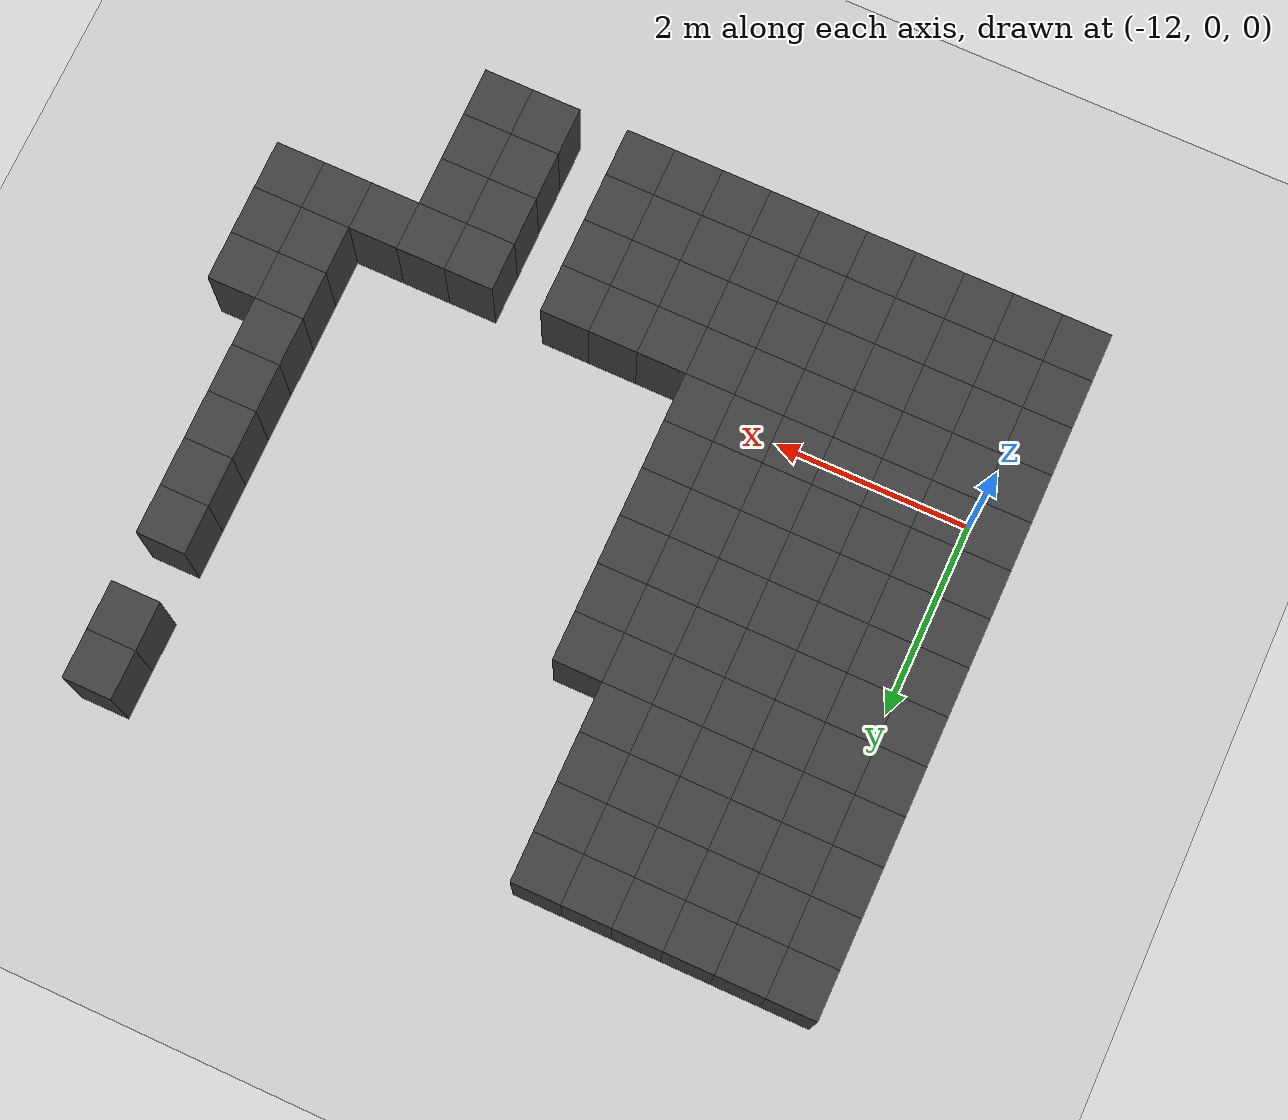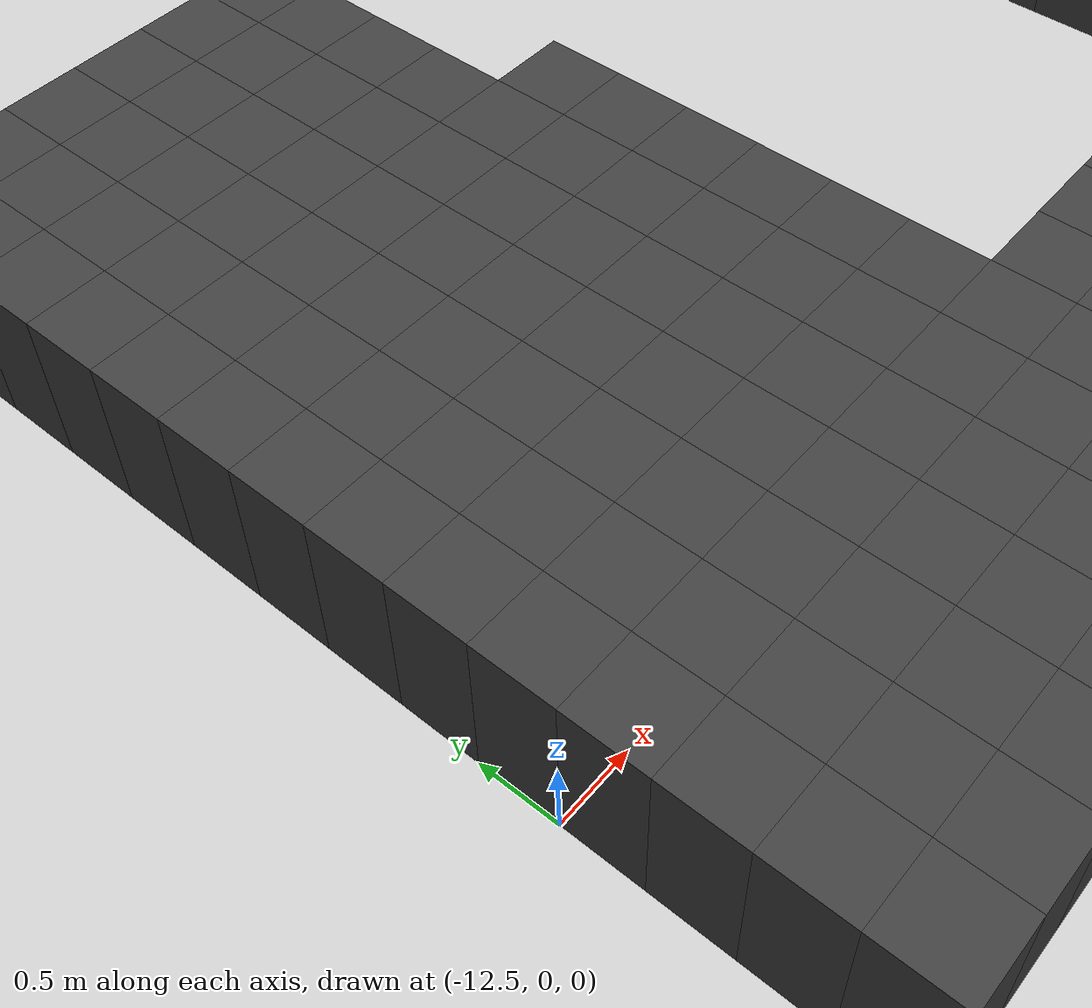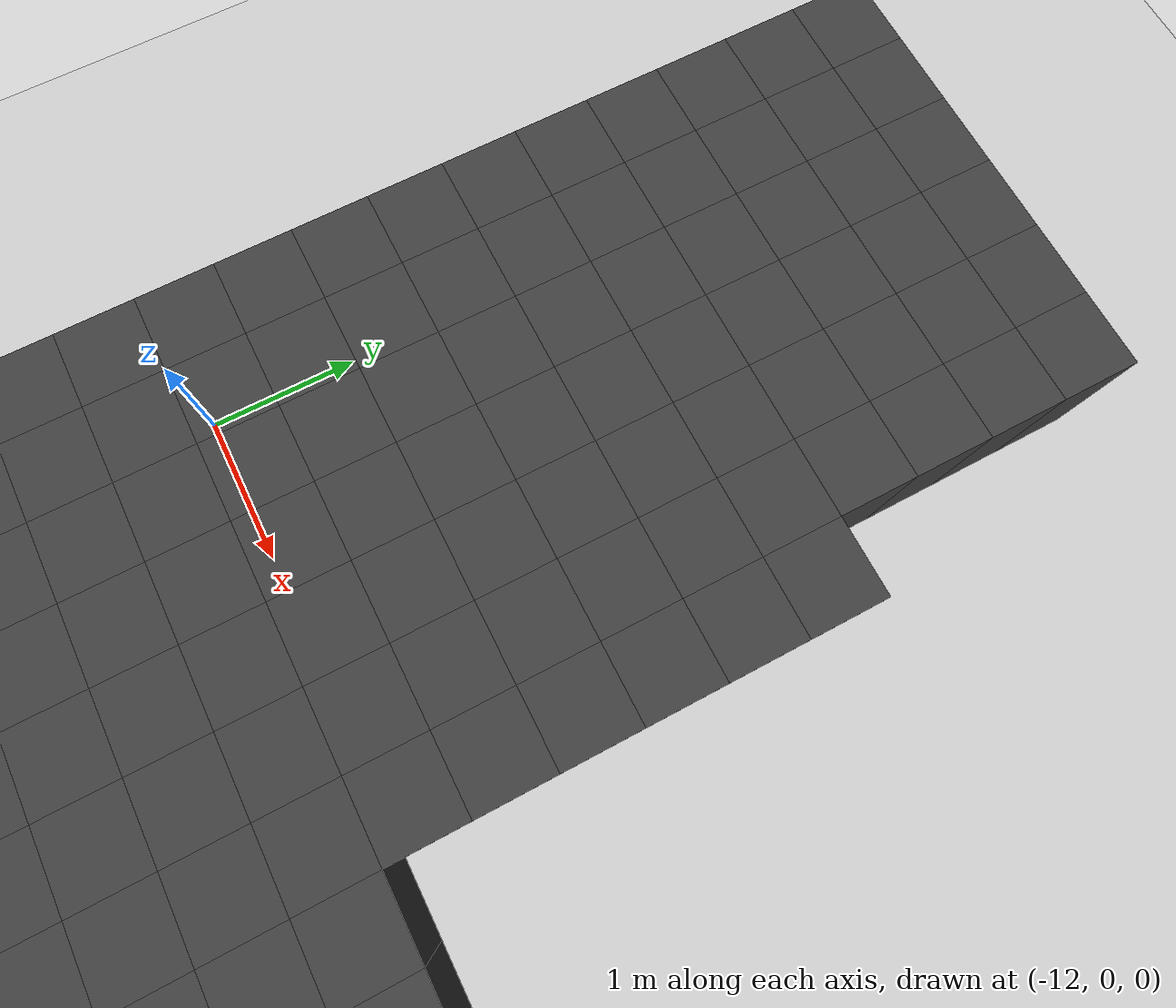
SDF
<sdf version="1.7">
 <world name="map_14494">
  <model name="ground_plane">
   <static>true</static>
   <link name="link">
    <collision name="collision">
     <geometry><plane><normal>0 0 1</normal><size>200 200</size></plane></geometry>
    </collision>
    <visual name="visual">
     <geometry><plane><normal>0 0 1</normal><size>200 200</size></plane></geometry>
     <material><ambient>0.8 0.8 0.8 1</ambient><diffuse>0.8 0.8 0.8 1</diffuse></material>
    </visual>
   </link>
  </model>
  <model name="maze_environment">
   <static>true</static>
   <link name="wall_541">
    <pose>-12.250 4.750 0.500 0 0 0</pose>
    <collision name="col"><geometry><box><size>0.5 0.5 1.0</size></box></geometry></collision>
    <visual name="vis">
     <geometry><box><size>0.5 0.5 1.0</size></box></geometry>
     <material><ambient>0.15 0.15 0.15 1</ambient><diffuse>0.25 0.25 0.25 1</diffuse></material>
    </visual>
   </link>
   <link name="wall_542">
    <pose>-11.750 4.750 0.500 0 0 0</pose>
    <collision name="col"><geometry><box><size>0.5 0.5 1.0</size></box></geometry></collision>
    <visual name="vis">
     <geometry><box><size>0.5 0.5 1.0</size></box></geometry>
     <material><ambient>0.15 0.15 0.15 1</ambient><diffuse>0.25 0.25 0.25 1</diffuse></material>
    </visual>
   </link>
   <link name="wall_543">
    <pose>-11.250 4.750 0.500 0 0 0</pose>
    <collision name="col"><geometry><box><size>0.5 0.5 1.0</size></box></geometry></collision>
    <visual name="vis">
     <geometry><box><size>0.5 0.5 1.0</size></box></geometry>
     <material><ambient>0.15 0.15 0.15 1</ambient><diffuse>0.25 0.25 0.25 1</diffuse></material>
    </visual>
   </link>
   <link name="wall_544">
    <pose>-10.750 4.750 0.500 0 0 0</pose>
    <collision name="col"><geometry><box><size>0.5 0.5 1.0</size></box></geometry></collision>
    <visual name="vis">
     <geometry><box><size>0.5 0.5 1.0</size></box></geometry>
     <material><ambient>0.15 0.15 0.15 1</ambient><diffuse>0.25 0.25 0.25 1</diffuse></material>
    </visual>
   </link>
   <link name="wall_545">
    <pose>-10.250 4.750 0.500 0 0 0</pose>
    <collision name="col"><geometry><box><size>0.5 0.5 1.0</size></box></geometry></collision>
    <visual name="vis">
     <geometry><box><size>0.5 0.5 1.0</size></box></geometry>
     <material><ambient>0.15 0.15 0.15 1</ambient><diffuse>0.25 0.25 0.25 1</diffuse></material>
    </visual>
   </link>
   <link name="wall_546">
    <pose>-9.750 4.750 0.500 0 0 0</pose>
    <collision name="col"><geometry><box><size>0.5 0.5 1.0</size></box></geometry></collision>
    <visual name="vis">
     <geometry><box><size>0.5 0.5 1.0</size></box></geometry>
     <material><ambient>0.15 0.15 0.15 1</ambient><diffuse>0.25 0.25 0.25 1</diffuse></material>
    </visual>
   </link>
   <link name="wall_547">
    <pose>-5.250 4.750 0.500 0 0 0</pose>
    <collision name="col"><geometry><box><size>0.5 0.5 1.0</size></box></geometry></collision>
    <visual name="vis">
     <geometry><box><size>0.5 0.5 1.0</size></box></geometry>
     <material><ambient>0.15 0.15 0.15 1</ambient><diffuse>0.25 0.25 0.25 1</diffuse></material>
    </visual>
   </link>
   <link name="wall_574">
    <pose>-12.250 4.250 0.500 0 0 0</pose>
    <collision name="col"><geometry><box><size>0.5 0.5 1.0</size></box></geometry></collision>
    <visual name="vis">
     <geometry><box><size>0.5 0.5 1.0</size></box></geometry>
     <material><ambient>0.15 0.15 0.15 1</ambient><diffuse>0.25 0.25 0.25 1</diffuse></material>
    </visual>
   </link>
   <link name="wall_575">
    <pose>-11.750 4.250 0.500 0 0 0</pose>
    <collision name="col"><geometry><box><size>0.5 0.5 1.0</size></box></geometry></collision>
    <visual name="vis">
     <geometry><box><size>0.5 0.5 1.0</size></box></geometry>
     <material><ambient>0.15 0.15 0.15 1</ambient><diffuse>0.25 0.25 0.25 1</diffuse></material>
    </visual>
   </link>
   <link name="wall_576">
    <pose>-11.250 4.250 0.500 0 0 0</pose>
    <collision name="col"><geometry><box><size>0.5 0.5 1.0</size></box></geometry></collision>
    <visual name="vis">
     <geometry><box><size>0.5 0.5 1.0</size></box></geometry>
     <material><ambient>0.15 0.15 0.15 1</ambient><diffuse>0.25 0.25 0.25 1</diffuse></material>
    </visual>
   </link>
   <link name="wall_577">
    <pose>-10.750 4.250 0.500 0 0 0</pose>
    <collision name="col"><geometry><box><size>0.5 0.5 1.0</size></box></geometry></collision>
    <visual name="vis">
     <geometry><box><size>0.5 0.5 1.0</size></box></geometry>
     <material><ambient>0.15 0.15 0.15 1</ambient><diffuse>0.25 0.25 0.25 1</diffuse></material>
    </visual>
   </link>
   <link name="wall_578">
    <pose>-10.250 4.250 0.500 0 0 0</pose>
    <collision name="col"><geometry><box><size>0.5 0.5 1.0</size></box></geometry></collision>
    <visual name="vis">
     <geometry><box><size>0.5 0.5 1.0</size></box></geometry>
     <material><ambient>0.15 0.15 0.15 1</ambient><diffuse>0.25 0.25 0.25 1</diffuse></material>
    </visual>
   </link>
   <link name="wall_579">
    <pose>-9.750 4.250 0.500 0 0 0</pose>
    <collision name="col"><geometry><box><size>0.5 0.5 1.0</size></box></geometry></collision>
    <visual name="vis">
     <geometry><box><size>0.5 0.5 1.0</size></box></geometry>
     <material><ambient>0.15 0.15 0.15 1</ambient><diffuse>0.25 0.25 0.25 1</diffuse></material>
    </visual>
   </link>
   <link name="wall_580">
    <pose>-5.250 4.250 0.500 0 0 0</pose>
    <collision name="col"><geometry><box><size>0.5 0.5 1.0</size></box></geometry></collision>
    <visual name="vis">
     <geometry><box><size>0.5 0.5 1.0</size></box></geometry>
     <material><ambient>0.15 0.15 0.15 1</ambient><diffuse>0.25 0.25 0.25 1</diffuse></material>
    </visual>
   </link>
   <link name="wall_607">
    <pose>-12.250 3.750 0.500 0 0 0</pose>
    <collision name="col"><geometry><box><size>0.5 0.5 1.0</size></box></geometry></collision>
    <visual name="vis">
     <geometry><box><size>0.5 0.5 1.0</size></box></geometry>
     <material><ambient>0.15 0.15 0.15 1</ambient><diffuse>0.25 0.25 0.25 1</diffuse></material>
    </visual>
   </link>
   <link name="wall_608">
    <pose>-11.750 3.750 0.500 0 0 0</pose>
    <collision name="col"><geometry><box><size>0.5 0.5 1.0</size></box></geometry></collision>
    <visual name="vis">
     <geometry><box><size>0.5 0.5 1.0</size></box></geometry>
     <material><ambient>0.15 0.15 0.15 1</ambient><diffuse>0.25 0.25 0.25 1</diffuse></material>
    </visual>
   </link>
   <link name="wall_609">
    <pose>-11.250 3.750 0.500 0 0 0</pose>
    <collision name="col"><geometry><box><size>0.5 0.5 1.0</size></box></geometry></collision>
    <visual name="vis">
     <geometry><box><size>0.5 0.5 1.0</size></box></geometry>
     <material><ambient>0.15 0.15 0.15 1</ambient><diffuse>0.25 0.25 0.25 1</diffuse></material>
    </visual>
   </link>
   <link name="wall_610">
    <pose>-10.750 3.750 0.500 0 0 0</pose>
    <collision name="col"><geometry><box><size>0.5 0.5 1.0</size></box></geometry></collision>
    <visual name="vis">
     <geometry><box><size>0.5 0.5 1.0</size></box></geometry>
     <material><ambient>0.15 0.15 0.15 1</ambient><diffuse>0.25 0.25 0.25 1</diffuse></material>
    </visual>
   </link>
   <link name="wall_611">
    <pose>-10.250 3.750 0.500 0 0 0</pose>
    <collision name="col"><geometry><box><size>0.5 0.5 1.0</size></box></geometry></collision>
    <visual name="vis">
     <geometry><box><size>0.5 0.5 1.0</size></box></geometry>
     <material><ambient>0.15 0.15 0.15 1</ambient><diffuse>0.25 0.25 0.25 1</diffuse></material>
    </visual>
   </link>
   <link name="wall_612">
    <pose>-9.750 3.750 0.500 0 0 0</pose>
    <collision name="col"><geometry><box><size>0.5 0.5 1.0</size></box></geometry></collision>
    <visual name="vis">
     <geometry><box><size>0.5 0.5 1.0</size></box></geometry>
     <material><ambient>0.15 0.15 0.15 1</ambient><diffuse>0.25 0.25 0.25 1</diffuse></material>
    </visual>
   </link>
   <link name="wall_640">
    <pose>-12.250 3.250 0.500 0 0 0</pose>
    <collision name="col"><geometry><box><size>0.5 0.5 1.0</size></box></geometry></collision>
    <visual name="vis">
     <geometry><box><size>0.5 0.5 1.0</size></box></geometry>
     <material><ambient>0.15 0.15 0.15 1</ambient><diffuse>0.25 0.25 0.25 1</diffuse></material>
    </visual>
   </link>
   <link name="wall_641">
    <pose>-11.750 3.250 0.500 0 0 0</pose>
    <collision name="col"><geometry><box><size>0.5 0.5 1.0</size></box></geometry></collision>
    <visual name="vis">
     <geometry><box><size>0.5 0.5 1.0</size></box></geometry>
     <material><ambient>0.15 0.15 0.15 1</ambient><diffuse>0.25 0.25 0.25 1</diffuse></material>
    </visual>
   </link>
   <link name="wall_642">
    <pose>-11.250 3.250 0.500 0 0 0</pose>
    <collision name="col"><geometry><box><size>0.5 0.5 1.0</size></box></geometry></collision>
    <visual name="vis">
     <geometry><box><size>0.5 0.5 1.0</size></box></geometry>
     <material><ambient>0.15 0.15 0.15 1</ambient><diffuse>0.25 0.25 0.25 1</diffuse></material>
    </visual>
   </link>
   <link name="wall_643">
    <pose>-10.750 3.250 0.500 0 0 0</pose>
    <collision name="col"><geometry><box><size>0.5 0.5 1.0</size></box></geometry></collision>
    <visual name="vis">
     <geometry><box><size>0.5 0.5 1.0</size></box></geometry>
     <material><ambient>0.15 0.15 0.15 1</ambient><diffuse>0.25 0.25 0.25 1</diffuse></material>
    </visual>
   </link>
   <link name="wall_644">
    <pose>-10.250 3.250 0.500 0 0 0</pose>
    <collision name="col"><geometry><box><size>0.5 0.5 1.0</size></box></geometry></collision>
    <visual name="vis">
     <geometry><box><size>0.5 0.5 1.0</size></box></geometry>
     <material><ambient>0.15 0.15 0.15 1</ambient><diffuse>0.25 0.25 0.25 1</diffuse></material>
    </visual>
   </link>
   <link name="wall_645">
    <pose>-9.750 3.250 0.500 0 0 0</pose>
    <collision name="col"><geometry><box><size>0.5 0.5 1.0</size></box></geometry></collision>
    <visual name="vis">
     <geometry><box><size>0.5 0.5 1.0</size></box></geometry>
     <material><ambient>0.15 0.15 0.15 1</ambient><diffuse>0.25 0.25 0.25 1</diffuse></material>
    </visual>
   </link>
   <link name="wall_646">
    <pose>-5.250 3.250 0.500 0 0 0</pose>
    <collision name="col"><geometry><box><size>0.5 0.5 1.0</size></box></geometry></collision>
    <visual name="vis">
     <geometry><box><size>0.5 0.5 1.0</size></box></geometry>
     <material><ambient>0.15 0.15 0.15 1</ambient><diffuse>0.25 0.25 0.25 1</diffuse></material>
    </visual>
   </link>
   <link name="wall_674">
    <pose>-12.250 2.750 0.500 0 0 0</pose>
    <collision name="col"><geometry><box><size>0.5 0.5 1.0</size></box></geometry></collision>
    <visual name="vis">
     <geometry><box><size>0.5 0.5 1.0</size></box></geometry>
     <material><ambient>0.15 0.15 0.15 1</ambient><diffuse>0.25 0.25 0.25 1</diffuse></material>
    </visual>
   </link>
   <link name="wall_675">
    <pose>-11.750 2.750 0.500 0 0 0</pose>
    <collision name="col"><geometry><box><size>0.5 0.5 1.0</size></box></geometry></collision>
    <visual name="vis">
     <geometry><box><size>0.5 0.5 1.0</size></box></geometry>
     <material><ambient>0.15 0.15 0.15 1</ambient><diffuse>0.25 0.25 0.25 1</diffuse></material>
    </visual>
   </link>
   <link name="wall_676">
    <pose>-11.250 2.750 0.500 0 0 0</pose>
    <collision name="col"><geometry><box><size>0.5 0.5 1.0</size></box></geometry></collision>
    <visual name="vis">
     <geometry><box><size>0.5 0.5 1.0</size></box></geometry>
     <material><ambient>0.15 0.15 0.15 1</ambient><diffuse>0.25 0.25 0.25 1</diffuse></material>
    </visual>
   </link>
   <link name="wall_677">
    <pose>-10.750 2.750 0.500 0 0 0</pose>
    <collision name="col"><geometry><box><size>0.5 0.5 1.0</size></box></geometry></collision>
    <visual name="vis">
     <geometry><box><size>0.5 0.5 1.0</size></box></geometry>
     <material><ambient>0.15 0.15 0.15 1</ambient><diffuse>0.25 0.25 0.25 1</diffuse></material>
    </visual>
   </link>
   <link name="wall_678">
    <pose>-10.250 2.750 0.500 0 0 0</pose>
    <collision name="col"><geometry><box><size>0.5 0.5 1.0</size></box></geometry></collision>
    <visual name="vis">
     <geometry><box><size>0.5 0.5 1.0</size></box></geometry>
     <material><ambient>0.15 0.15 0.15 1</ambient><diffuse>0.25 0.25 0.25 1</diffuse></material>
    </visual>
   </link>
   <link name="wall_679">
    <pose>-9.750 2.750 0.500 0 0 0</pose>
    <collision name="col"><geometry><box><size>0.5 0.5 1.0</size></box></geometry></collision>
    <visual name="vis">
     <geometry><box><size>0.5 0.5 1.0</size></box></geometry>
     <material><ambient>0.15 0.15 0.15 1</ambient><diffuse>0.25 0.25 0.25 1</diffuse></material>
    </visual>
   </link>
   <link name="wall_680">
    <pose>-9.250 2.750 0.500 0 0 0</pose>
    <collision name="col"><geometry><box><size>0.5 0.5 1.0</size></box></geometry></collision>
    <visual name="vis">
     <geometry><box><size>0.5 0.5 1.0</size></box></geometry>
     <material><ambient>0.15 0.15 0.15 1</ambient><diffuse>0.25 0.25 0.25 1</diffuse></material>
    </visual>
   </link>
   <link name="wall_681">
    <pose>-5.250 2.750 0.500 0 0 0</pose>
    <collision name="col"><geometry><box><size>0.5 0.5 1.0</size></box></geometry></collision>
    <visual name="vis">
     <geometry><box><size>0.5 0.5 1.0</size></box></geometry>
     <material><ambient>0.15 0.15 0.15 1</ambient><diffuse>0.25 0.25 0.25 1</diffuse></material>
    </visual>
   </link>
   <link name="wall_709">
    <pose>-12.250 2.250 0.500 0 0 0</pose>
    <collision name="col"><geometry><box><size>0.5 0.5 1.0</size></box></geometry></collision>
    <visual name="vis">
     <geometry><box><size>0.5 0.5 1.0</size></box></geometry>
     <material><ambient>0.15 0.15 0.15 1</ambient><diffuse>0.25 0.25 0.25 1</diffuse></material>
    </visual>
   </link>
   <link name="wall_710">
    <pose>-11.750 2.250 0.500 0 0 0</pose>
    <collision name="col"><geometry><box><size>0.5 0.5 1.0</size></box></geometry></collision>
    <visual name="vis">
     <geometry><box><size>0.5 0.5 1.0</size></box></geometry>
     <material><ambient>0.15 0.15 0.15 1</ambient><diffuse>0.25 0.25 0.25 1</diffuse></material>
    </visual>
   </link>
   <link name="wall_711">
    <pose>-11.250 2.250 0.500 0 0 0</pose>
    <collision name="col"><geometry><box><size>0.5 0.5 1.0</size></box></geometry></collision>
    <visual name="vis">
     <geometry><box><size>0.5 0.5 1.0</size></box></geometry>
     <material><ambient>0.15 0.15 0.15 1</ambient><diffuse>0.25 0.25 0.25 1</diffuse></material>
    </visual>
   </link>
   <link name="wall_712">
    <pose>-10.750 2.250 0.500 0 0 0</pose>
    <collision name="col"><geometry><box><size>0.5 0.5 1.0</size></box></geometry></collision>
    <visual name="vis">
     <geometry><box><size>0.5 0.5 1.0</size></box></geometry>
     <material><ambient>0.15 0.15 0.15 1</ambient><diffuse>0.25 0.25 0.25 1</diffuse></material>
    </visual>
   </link>
   <link name="wall_713">
    <pose>-10.250 2.250 0.500 0 0 0</pose>
    <collision name="col"><geometry><box><size>0.5 0.5 1.0</size></box></geometry></collision>
    <visual name="vis">
     <geometry><box><size>0.5 0.5 1.0</size></box></geometry>
     <material><ambient>0.15 0.15 0.15 1</ambient><diffuse>0.25 0.25 0.25 1</diffuse></material>
    </visual>
   </link>
   <link name="wall_714">
    <pose>-9.750 2.250 0.500 0 0 0</pose>
    <collision name="col"><geometry><box><size>0.5 0.5 1.0</size></box></geometry></collision>
    <visual name="vis">
     <geometry><box><size>0.5 0.5 1.0</size></box></geometry>
     <material><ambient>0.15 0.15 0.15 1</ambient><diffuse>0.25 0.25 0.25 1</diffuse></material>
    </visual>
   </link>
   <link name="wall_715">
    <pose>-9.250 2.250 0.500 0 0 0</pose>
    <collision name="col"><geometry><box><size>0.5 0.5 1.0</size></box></geometry></collision>
    <visual name="vis">
     <geometry><box><size>0.5 0.5 1.0</size></box></geometry>
     <material><ambient>0.15 0.15 0.15 1</ambient><diffuse>0.25 0.25 0.25 1</diffuse></material>
    </visual>
   </link>
   <link name="wall_716">
    <pose>-5.250 2.250 0.500 0 0 0</pose>
    <collision name="col"><geometry><box><size>0.5 0.5 1.0</size></box></geometry></collision>
    <visual name="vis">
     <geometry><box><size>0.5 0.5 1.0</size></box></geometry>
     <material><ambient>0.15 0.15 0.15 1</ambient><diffuse>0.25 0.25 0.25 1</diffuse></material>
    </visual>
   </link>
   <link name="wall_744">
    <pose>-12.250 1.750 0.500 0 0 0</pose>
    <collision name="col"><geometry><box><size>0.5 0.5 1.0</size></box></geometry></collision>
    <visual name="vis">
     <geometry><box><size>0.5 0.5 1.0</size></box></geometry>
     <material><ambient>0.15 0.15 0.15 1</ambient><diffuse>0.25 0.25 0.25 1</diffuse></material>
    </visual>
   </link>
   <link name="wall_745">
    <pose>-11.750 1.750 0.500 0 0 0</pose>
    <collision name="col"><geometry><box><size>0.5 0.5 1.0</size></box></geometry></collision>
    <visual name="vis">
     <geometry><box><size>0.5 0.5 1.0</size></box></geometry>
     <material><ambient>0.15 0.15 0.15 1</ambient><diffuse>0.25 0.25 0.25 1</diffuse></material>
    </visual>
   </link>
   <link name="wall_746">
    <pose>-11.250 1.750 0.500 0 0 0</pose>
    <collision name="col"><geometry><box><size>0.5 0.5 1.0</size></box></geometry></collision>
    <visual name="vis">
     <geometry><box><size>0.5 0.5 1.0</size></box></geometry>
     <material><ambient>0.15 0.15 0.15 1</ambient><diffuse>0.25 0.25 0.25 1</diffuse></material>
    </visual>
   </link>
   <link name="wall_747">
    <pose>-10.750 1.750 0.500 0 0 0</pose>
    <collision name="col"><geometry><box><size>0.5 0.5 1.0</size></box></geometry></collision>
    <visual name="vis">
     <geometry><box><size>0.5 0.5 1.0</size></box></geometry>
     <material><ambient>0.15 0.15 0.15 1</ambient><diffuse>0.25 0.25 0.25 1</diffuse></material>
    </visual>
   </link>
   <link name="wall_748">
    <pose>-10.250 1.750 0.500 0 0 0</pose>
    <collision name="col"><geometry><box><size>0.5 0.5 1.0</size></box></geometry></collision>
    <visual name="vis">
     <geometry><box><size>0.5 0.5 1.0</size></box></geometry>
     <material><ambient>0.15 0.15 0.15 1</ambient><diffuse>0.25 0.25 0.25 1</diffuse></material>
    </visual>
   </link>
   <link name="wall_749">
    <pose>-9.750 1.750 0.500 0 0 0</pose>
    <collision name="col"><geometry><box><size>0.5 0.5 1.0</size></box></geometry></collision>
    <visual name="vis">
     <geometry><box><size>0.5 0.5 1.0</size></box></geometry>
     <material><ambient>0.15 0.15 0.15 1</ambient><diffuse>0.25 0.25 0.25 1</diffuse></material>
    </visual>
   </link>
   <link name="wall_750">
    <pose>-9.250 1.750 0.500 0 0 0</pose>
    <collision name="col"><geometry><box><size>0.5 0.5 1.0</size></box></geometry></collision>
    <visual name="vis">
     <geometry><box><size>0.5 0.5 1.0</size></box></geometry>
     <material><ambient>0.15 0.15 0.15 1</ambient><diffuse>0.25 0.25 0.25 1</diffuse></material>
    </visual>
   </link>
   <link name="wall_751">
    <pose>-5.250 1.750 0.500 0 0 0</pose>
    <collision name="col"><geometry><box><size>0.5 0.5 1.0</size></box></geometry></collision>
    <visual name="vis">
     <geometry><box><size>0.5 0.5 1.0</size></box></geometry>
     <material><ambient>0.15 0.15 0.15 1</ambient><diffuse>0.25 0.25 0.25 1</diffuse></material>
    </visual>
   </link>
   <link name="wall_787">
    <pose>-12.250 1.250 0.500 0 0 0</pose>
    <collision name="col"><geometry><box><size>0.5 0.5 1.0</size></box></geometry></collision>
    <visual name="vis">
     <geometry><box><size>0.5 0.5 1.0</size></box></geometry>
     <material><ambient>0.15 0.15 0.15 1</ambient><diffuse>0.25 0.25 0.25 1</diffuse></material>
    </visual>
   </link>
   <link name="wall_788">
    <pose>-11.750 1.250 0.500 0 0 0</pose>
    <collision name="col"><geometry><box><size>0.5 0.5 1.0</size></box></geometry></collision>
    <visual name="vis">
     <geometry><box><size>0.5 0.5 1.0</size></box></geometry>
     <material><ambient>0.15 0.15 0.15 1</ambient><diffuse>0.25 0.25 0.25 1</diffuse></material>
    </visual>
   </link>
   <link name="wall_789">
    <pose>-11.250 1.250 0.500 0 0 0</pose>
    <collision name="col"><geometry><box><size>0.5 0.5 1.0</size></box></geometry></collision>
    <visual name="vis">
     <geometry><box><size>0.5 0.5 1.0</size></box></geometry>
     <material><ambient>0.15 0.15 0.15 1</ambient><diffuse>0.25 0.25 0.25 1</diffuse></material>
    </visual>
   </link>
   <link name="wall_790">
    <pose>-10.750 1.250 0.500 0 0 0</pose>
    <collision name="col"><geometry><box><size>0.5 0.5 1.0</size></box></geometry></collision>
    <visual name="vis">
     <geometry><box><size>0.5 0.5 1.0</size></box></geometry>
     <material><ambient>0.15 0.15 0.15 1</ambient><diffuse>0.25 0.25 0.25 1</diffuse></material>
    </visual>
   </link>
   <link name="wall_791">
    <pose>-10.250 1.250 0.500 0 0 0</pose>
    <collision name="col"><geometry><box><size>0.5 0.5 1.0</size></box></geometry></collision>
    <visual name="vis">
     <geometry><box><size>0.5 0.5 1.0</size></box></geometry>
     <material><ambient>0.15 0.15 0.15 1</ambient><diffuse>0.25 0.25 0.25 1</diffuse></material>
    </visual>
   </link>
   <link name="wall_792">
    <pose>-9.750 1.250 0.500 0 0 0</pose>
    <collision name="col"><geometry><box><size>0.5 0.5 1.0</size></box></geometry></collision>
    <visual name="vis">
     <geometry><box><size>0.5 0.5 1.0</size></box></geometry>
     <material><ambient>0.15 0.15 0.15 1</ambient><diffuse>0.25 0.25 0.25 1</diffuse></material>
    </visual>
   </link>
   <link name="wall_793">
    <pose>-9.250 1.250 0.500 0 0 0</pose>
    <collision name="col"><geometry><box><size>0.5 0.5 1.0</size></box></geometry></collision>
    <visual name="vis">
     <geometry><box><size>0.5 0.5 1.0</size></box></geometry>
     <material><ambient>0.15 0.15 0.15 1</ambient><diffuse>0.25 0.25 0.25 1</diffuse></material>
    </visual>
   </link>
   <link name="wall_794">
    <pose>-5.250 1.250 0.500 0 0 0</pose>
    <collision name="col"><geometry><box><size>0.5 0.5 1.0</size></box></geometry></collision>
    <visual name="vis">
     <geometry><box><size>0.5 0.5 1.0</size></box></geometry>
     <material><ambient>0.15 0.15 0.15 1</ambient><diffuse>0.25 0.25 0.25 1</diffuse></material>
    </visual>
   </link>
   <link name="wall_830">
    <pose>-12.250 0.750 0.500 0 0 0</pose>
    <collision name="col"><geometry><box><size>0.5 0.5 1.0</size></box></geometry></collision>
    <visual name="vis">
     <geometry><box><size>0.5 0.5 1.0</size></box></geometry>
     <material><ambient>0.15 0.15 0.15 1</ambient><diffuse>0.25 0.25 0.25 1</diffuse></material>
    </visual>
   </link>
   <link name="wall_831">
    <pose>-11.750 0.750 0.500 0 0 0</pose>
    <collision name="col"><geometry><box><size>0.5 0.5 1.0</size></box></geometry></collision>
    <visual name="vis">
     <geometry><box><size>0.5 0.5 1.0</size></box></geometry>
     <material><ambient>0.15 0.15 0.15 1</ambient><diffuse>0.25 0.25 0.25 1</diffuse></material>
    </visual>
   </link>
   <link name="wall_832">
    <pose>-11.250 0.750 0.500 0 0 0</pose>
    <collision name="col"><geometry><box><size>0.5 0.5 1.0</size></box></geometry></collision>
    <visual name="vis">
     <geometry><box><size>0.5 0.5 1.0</size></box></geometry>
     <material><ambient>0.15 0.15 0.15 1</ambient><diffuse>0.25 0.25 0.25 1</diffuse></material>
    </visual>
   </link>
   <link name="wall_833">
    <pose>-10.750 0.750 0.500 0 0 0</pose>
    <collision name="col"><geometry><box><size>0.5 0.5 1.0</size></box></geometry></collision>
    <visual name="vis">
     <geometry><box><size>0.5 0.5 1.0</size></box></geometry>
     <material><ambient>0.15 0.15 0.15 1</ambient><diffuse>0.25 0.25 0.25 1</diffuse></material>
    </visual>
   </link>
   <link name="wall_834">
    <pose>-10.250 0.750 0.500 0 0 0</pose>
    <collision name="col"><geometry><box><size>0.5 0.5 1.0</size></box></geometry></collision>
    <visual name="vis">
     <geometry><box><size>0.5 0.5 1.0</size></box></geometry>
     <material><ambient>0.15 0.15 0.15 1</ambient><diffuse>0.25 0.25 0.25 1</diffuse></material>
    </visual>
   </link>
   <link name="wall_835">
    <pose>-9.750 0.750 0.500 0 0 0</pose>
    <collision name="col"><geometry><box><size>0.5 0.5 1.0</size></box></geometry></collision>
    <visual name="vis">
     <geometry><box><size>0.5 0.5 1.0</size></box></geometry>
     <material><ambient>0.15 0.15 0.15 1</ambient><diffuse>0.25 0.25 0.25 1</diffuse></material>
    </visual>
   </link>
   <link name="wall_836">
    <pose>-9.250 0.750 0.500 0 0 0</pose>
    <collision name="col"><geometry><box><size>0.5 0.5 1.0</size></box></geometry></collision>
    <visual name="vis">
     <geometry><box><size>0.5 0.5 1.0</size></box></geometry>
     <material><ambient>0.15 0.15 0.15 1</ambient><diffuse>0.25 0.25 0.25 1</diffuse></material>
    </visual>
   </link>
   <link name="wall_837">
    <pose>-5.250 0.750 0.500 0 0 0</pose>
    <collision name="col"><geometry><box><size>0.5 0.5 1.0</size></box></geometry></collision>
    <visual name="vis">
     <geometry><box><size>0.5 0.5 1.0</size></box></geometry>
     <material><ambient>0.15 0.15 0.15 1</ambient><diffuse>0.25 0.25 0.25 1</diffuse></material>
    </visual>
   </link>
   <link name="wall_838">
    <pose>-4.750 0.750 0.500 0 0 0</pose>
    <collision name="col"><geometry><box><size>0.5 0.5 1.0</size></box></geometry></collision>
    <visual name="vis">
     <geometry><box><size>0.5 0.5 1.0</size></box></geometry>
     <material><ambient>0.15 0.15 0.15 1</ambient><diffuse>0.25 0.25 0.25 1</diffuse></material>
    </visual>
   </link>
   <link name="wall_869">
    <pose>-12.250 0.250 0.500 0 0 0</pose>
    <collision name="col"><geometry><box><size>0.5 0.5 1.0</size></box></geometry></collision>
    <visual name="vis">
     <geometry><box><size>0.5 0.5 1.0</size></box></geometry>
     <material><ambient>0.15 0.15 0.15 1</ambient><diffuse>0.25 0.25 0.25 1</diffuse></material>
    </visual>
   </link>
   <link name="wall_870">
    <pose>-11.750 0.250 0.500 0 0 0</pose>
    <collision name="col"><geometry><box><size>0.5 0.5 1.0</size></box></geometry></collision>
    <visual name="vis">
     <geometry><box><size>0.5 0.5 1.0</size></box></geometry>
     <material><ambient>0.15 0.15 0.15 1</ambient><diffuse>0.25 0.25 0.25 1</diffuse></material>
    </visual>
   </link>
   <link name="wall_871">
    <pose>-11.250 0.250 0.500 0 0 0</pose>
    <collision name="col"><geometry><box><size>0.5 0.5 1.0</size></box></geometry></collision>
    <visual name="vis">
     <geometry><box><size>0.5 0.5 1.0</size></box></geometry>
     <material><ambient>0.15 0.15 0.15 1</ambient><diffuse>0.25 0.25 0.25 1</diffuse></material>
    </visual>
   </link>
   <link name="wall_872">
    <pose>-10.750 0.250 0.500 0 0 0</pose>
    <collision name="col"><geometry><box><size>0.5 0.5 1.0</size></box></geometry></collision>
    <visual name="vis">
     <geometry><box><size>0.5 0.5 1.0</size></box></geometry>
     <material><ambient>0.15 0.15 0.15 1</ambient><diffuse>0.25 0.25 0.25 1</diffuse></material>
    </visual>
   </link>
   <link name="wall_873">
    <pose>-10.250 0.250 0.500 0 0 0</pose>
    <collision name="col"><geometry><box><size>0.5 0.5 1.0</size></box></geometry></collision>
    <visual name="vis">
     <geometry><box><size>0.5 0.5 1.0</size></box></geometry>
     <material><ambient>0.15 0.15 0.15 1</ambient><diffuse>0.25 0.25 0.25 1</diffuse></material>
    </visual>
   </link>
   <link name="wall_874">
    <pose>-9.750 0.250 0.500 0 0 0</pose>
    <collision name="col"><geometry><box><size>0.5 0.5 1.0</size></box></geometry></collision>
    <visual name="vis">
     <geometry><box><size>0.5 0.5 1.0</size></box></geometry>
     <material><ambient>0.15 0.15 0.15 1</ambient><diffuse>0.25 0.25 0.25 1</diffuse></material>
    </visual>
   </link>
   <link name="wall_875">
    <pose>-9.250 0.250 0.500 0 0 0</pose>
    <collision name="col"><geometry><box><size>0.5 0.5 1.0</size></box></geometry></collision>
    <visual name="vis">
     <geometry><box><size>0.5 0.5 1.0</size></box></geometry>
     <material><ambient>0.15 0.15 0.15 1</ambient><diffuse>0.25 0.25 0.25 1</diffuse></material>
    </visual>
   </link>
   <link name="wall_876">
    <pose>-5.250 0.250 0.500 0 0 0</pose>
    <collision name="col"><geometry><box><size>0.5 0.5 1.0</size></box></geometry></collision>
    <visual name="vis">
     <geometry><box><size>0.5 0.5 1.0</size></box></geometry>
     <material><ambient>0.15 0.15 0.15 1</ambient><diffuse>0.25 0.25 0.25 1</diffuse></material>
    </visual>
   </link>
   <link name="wall_877">
    <pose>-4.750 0.250 0.500 0 0 0</pose>
    <collision name="col"><geometry><box><size>0.5 0.5 1.0</size></box></geometry></collision>
    <visual name="vis">
     <geometry><box><size>0.5 0.5 1.0</size></box></geometry>
     <material><ambient>0.15 0.15 0.15 1</ambient><diffuse>0.25 0.25 0.25 1</diffuse></material>
    </visual>
   </link>
   <link name="wall_908">
    <pose>-12.250 -0.250 0.500 0 0 0</pose>
    <collision name="col"><geometry><box><size>0.5 0.5 1.0</size></box></geometry></collision>
    <visual name="vis">
     <geometry><box><size>0.5 0.5 1.0</size></box></geometry>
     <material><ambient>0.15 0.15 0.15 1</ambient><diffuse>0.25 0.25 0.25 1</diffuse></material>
    </visual>
   </link>
   <link name="wall_909">
    <pose>-11.750 -0.250 0.500 0 0 0</pose>
    <collision name="col"><geometry><box><size>0.5 0.5 1.0</size></box></geometry></collision>
    <visual name="vis">
     <geometry><box><size>0.5 0.5 1.0</size></box></geometry>
     <material><ambient>0.15 0.15 0.15 1</ambient><diffuse>0.25 0.25 0.25 1</diffuse></material>
    </visual>
   </link>
   <link name="wall_910">
    <pose>-11.250 -0.250 0.500 0 0 0</pose>
    <collision name="col"><geometry><box><size>0.5 0.5 1.0</size></box></geometry></collision>
    <visual name="vis">
     <geometry><box><size>0.5 0.5 1.0</size></box></geometry>
     <material><ambient>0.15 0.15 0.15 1</ambient><diffuse>0.25 0.25 0.25 1</diffuse></material>
    </visual>
   </link>
   <link name="wall_911">
    <pose>-10.750 -0.250 0.500 0 0 0</pose>
    <collision name="col"><geometry><box><size>0.5 0.5 1.0</size></box></geometry></collision>
    <visual name="vis">
     <geometry><box><size>0.5 0.5 1.0</size></box></geometry>
     <material><ambient>0.15 0.15 0.15 1</ambient><diffuse>0.25 0.25 0.25 1</diffuse></material>
    </visual>
   </link>
   <link name="wall_912">
    <pose>-10.250 -0.250 0.500 0 0 0</pose>
    <collision name="col"><geometry><box><size>0.5 0.5 1.0</size></box></geometry></collision>
    <visual name="vis">
     <geometry><box><size>0.5 0.5 1.0</size></box></geometry>
     <material><ambient>0.15 0.15 0.15 1</ambient><diffuse>0.25 0.25 0.25 1</diffuse></material>
    </visual>
   </link>
   <link name="wall_913">
    <pose>-9.750 -0.250 0.500 0 0 0</pose>
    <collision name="col"><geometry><box><size>0.5 0.5 1.0</size></box></geometry></collision>
    <visual name="vis">
     <geometry><box><size>0.5 0.5 1.0</size></box></geometry>
     <material><ambient>0.15 0.15 0.15 1</ambient><diffuse>0.25 0.25 0.25 1</diffuse></material>
    </visual>
   </link>
   <link name="wall_914">
    <pose>-9.250 -0.250 0.500 0 0 0</pose>
    <collision name="col"><geometry><box><size>0.5 0.5 1.0</size></box></geometry></collision>
    <visual name="vis">
     <geometry><box><size>0.5 0.5 1.0</size></box></geometry>
     <material><ambient>0.15 0.15 0.15 1</ambient><diffuse>0.25 0.25 0.25 1</diffuse></material>
    </visual>
   </link>
   <link name="wall_915">
    <pose>-8.750 -0.250 0.500 0 0 0</pose>
    <collision name="col"><geometry><box><size>0.5 0.5 1.0</size></box></geometry></collision>
    <visual name="vis">
     <geometry><box><size>0.5 0.5 1.0</size></box></geometry>
     <material><ambient>0.15 0.15 0.15 1</ambient><diffuse>0.25 0.25 0.25 1</diffuse></material>
    </visual>
   </link>
   <link name="wall_916">
    <pose>-8.250 -0.250 0.500 0 0 0</pose>
    <collision name="col"><geometry><box><size>0.5 0.5 1.0</size></box></geometry></collision>
    <visual name="vis">
     <geometry><box><size>0.5 0.5 1.0</size></box></geometry>
     <material><ambient>0.15 0.15 0.15 1</ambient><diffuse>0.25 0.25 0.25 1</diffuse></material>
    </visual>
   </link>
   <link name="wall_917">
    <pose>-7.750 -0.250 0.500 0 0 0</pose>
    <collision name="col"><geometry><box><size>0.5 0.5 1.0</size></box></geometry></collision>
    <visual name="vis">
     <geometry><box><size>0.5 0.5 1.0</size></box></geometry>
     <material><ambient>0.15 0.15 0.15 1</ambient><diffuse>0.25 0.25 0.25 1</diffuse></material>
    </visual>
   </link>
   <link name="wall_918">
    <pose>-6.750 -0.250 0.500 0 0 0</pose>
    <collision name="col"><geometry><box><size>0.5 0.5 1.0</size></box></geometry></collision>
    <visual name="vis">
     <geometry><box><size>0.5 0.5 1.0</size></box></geometry>
     <material><ambient>0.15 0.15 0.15 1</ambient><diffuse>0.25 0.25 0.25 1</diffuse></material>
    </visual>
   </link>
   <link name="wall_919">
    <pose>-6.250 -0.250 0.500 0 0 0</pose>
    <collision name="col"><geometry><box><size>0.5 0.5 1.0</size></box></geometry></collision>
    <visual name="vis">
     <geometry><box><size>0.5 0.5 1.0</size></box></geometry>
     <material><ambient>0.15 0.15 0.15 1</ambient><diffuse>0.25 0.25 0.25 1</diffuse></material>
    </visual>
   </link>
   <link name="wall_920">
    <pose>-5.750 -0.250 0.500 0 0 0</pose>
    <collision name="col"><geometry><box><size>0.5 0.5 1.0</size></box></geometry></collision>
    <visual name="vis">
     <geometry><box><size>0.5 0.5 1.0</size></box></geometry>
     <material><ambient>0.15 0.15 0.15 1</ambient><diffuse>0.25 0.25 0.25 1</diffuse></material>
    </visual>
   </link>
   <link name="wall_921">
    <pose>-5.250 -0.250 0.500 0 0 0</pose>
    <collision name="col"><geometry><box><size>0.5 0.5 1.0</size></box></geometry></collision>
    <visual name="vis">
     <geometry><box><size>0.5 0.5 1.0</size></box></geometry>
     <material><ambient>0.15 0.15 0.15 1</ambient><diffuse>0.25 0.25 0.25 1</diffuse></material>
    </visual>
   </link>
   <link name="wall_922">
    <pose>-4.750 -0.250 0.500 0 0 0</pose>
    <collision name="col"><geometry><box><size>0.5 0.5 1.0</size></box></geometry></collision>
    <visual name="vis">
     <geometry><box><size>0.5 0.5 1.0</size></box></geometry>
     <material><ambient>0.15 0.15 0.15 1</ambient><diffuse>0.25 0.25 0.25 1</diffuse></material>
    </visual>
   </link>
   <link name="wall_949">
    <pose>-12.250 -0.750 0.500 0 0 0</pose>
    <collision name="col"><geometry><box><size>0.5 0.5 1.0</size></box></geometry></collision>
    <visual name="vis">
     <geometry><box><size>0.5 0.5 1.0</size></box></geometry>
     <material><ambient>0.15 0.15 0.15 1</ambient><diffuse>0.25 0.25 0.25 1</diffuse></material>
    </visual>
   </link>
   <link name="wall_950">
    <pose>-11.750 -0.750 0.500 0 0 0</pose>
    <collision name="col"><geometry><box><size>0.5 0.5 1.0</size></box></geometry></collision>
    <visual name="vis">
     <geometry><box><size>0.5 0.5 1.0</size></box></geometry>
     <material><ambient>0.15 0.15 0.15 1</ambient><diffuse>0.25 0.25 0.25 1</diffuse></material>
    </visual>
   </link>
   <link name="wall_951">
    <pose>-11.250 -0.750 0.500 0 0 0</pose>
    <collision name="col"><geometry><box><size>0.5 0.5 1.0</size></box></geometry></collision>
    <visual name="vis">
     <geometry><box><size>0.5 0.5 1.0</size></box></geometry>
     <material><ambient>0.15 0.15 0.15 1</ambient><diffuse>0.25 0.25 0.25 1</diffuse></material>
    </visual>
   </link>
   <link name="wall_952">
    <pose>-10.750 -0.750 0.500 0 0 0</pose>
    <collision name="col"><geometry><box><size>0.5 0.5 1.0</size></box></geometry></collision>
    <visual name="vis">
     <geometry><box><size>0.5 0.5 1.0</size></box></geometry>
     <material><ambient>0.15 0.15 0.15 1</ambient><diffuse>0.25 0.25 0.25 1</diffuse></material>
    </visual>
   </link>
   <link name="wall_953">
    <pose>-10.250 -0.750 0.500 0 0 0</pose>
    <collision name="col"><geometry><box><size>0.5 0.5 1.0</size></box></geometry></collision>
    <visual name="vis">
     <geometry><box><size>0.5 0.5 1.0</size></box></geometry>
     <material><ambient>0.15 0.15 0.15 1</ambient><diffuse>0.25 0.25 0.25 1</diffuse></material>
    </visual>
   </link>
   <link name="wall_954">
    <pose>-9.750 -0.750 0.500 0 0 0</pose>
    <collision name="col"><geometry><box><size>0.5 0.5 1.0</size></box></geometry></collision>
    <visual name="vis">
     <geometry><box><size>0.5 0.5 1.0</size></box></geometry>
     <material><ambient>0.15 0.15 0.15 1</ambient><diffuse>0.25 0.25 0.25 1</diffuse></material>
    </visual>
   </link>
   <link name="wall_955">
    <pose>-9.250 -0.750 0.500 0 0 0</pose>
    <collision name="col"><geometry><box><size>0.5 0.5 1.0</size></box></geometry></collision>
    <visual name="vis">
     <geometry><box><size>0.5 0.5 1.0</size></box></geometry>
     <material><ambient>0.15 0.15 0.15 1</ambient><diffuse>0.25 0.25 0.25 1</diffuse></material>
    </visual>
   </link>
   <link name="wall_956">
    <pose>-8.750 -0.750 0.500 0 0 0</pose>
    <collision name="col"><geometry><box><size>0.5 0.5 1.0</size></box></geometry></collision>
    <visual name="vis">
     <geometry><box><size>0.5 0.5 1.0</size></box></geometry>
     <material><ambient>0.15 0.15 0.15 1</ambient><diffuse>0.25 0.25 0.25 1</diffuse></material>
    </visual>
   </link>
   <link name="wall_957">
    <pose>-8.250 -0.750 0.500 0 0 0</pose>
    <collision name="col"><geometry><box><size>0.5 0.5 1.0</size></box></geometry></collision>
    <visual name="vis">
     <geometry><box><size>0.5 0.5 1.0</size></box></geometry>
     <material><ambient>0.15 0.15 0.15 1</ambient><diffuse>0.25 0.25 0.25 1</diffuse></material>
    </visual>
   </link>
   <link name="wall_958">
    <pose>-7.750 -0.750 0.500 0 0 0</pose>
    <collision name="col"><geometry><box><size>0.5 0.5 1.0</size></box></geometry></collision>
    <visual name="vis">
     <geometry><box><size>0.5 0.5 1.0</size></box></geometry>
     <material><ambient>0.15 0.15 0.15 1</ambient><diffuse>0.25 0.25 0.25 1</diffuse></material>
    </visual>
   </link>
   <link name="wall_959">
    <pose>-6.750 -0.750 0.500 0 0 0</pose>
    <collision name="col"><geometry><box><size>0.5 0.5 1.0</size></box></geometry></collision>
    <visual name="vis">
     <geometry><box><size>0.5 0.5 1.0</size></box></geometry>
     <material><ambient>0.15 0.15 0.15 1</ambient><diffuse>0.25 0.25 0.25 1</diffuse></material>
    </visual>
   </link>
   <link name="wall_960">
    <pose>-6.250 -0.750 0.500 0 0 0</pose>
    <collision name="col"><geometry><box><size>0.5 0.5 1.0</size></box></geometry></collision>
    <visual name="vis">
     <geometry><box><size>0.5 0.5 1.0</size></box></geometry>
     <material><ambient>0.15 0.15 0.15 1</ambient><diffuse>0.25 0.25 0.25 1</diffuse></material>
    </visual>
   </link>
   <link name="wall_985">
    <pose>-12.250 -1.250 0.500 0 0 0</pose>
    <collision name="col"><geometry><box><size>0.5 0.5 1.0</size></box></geometry></collision>
    <visual name="vis">
     <geometry><box><size>0.5 0.5 1.0</size></box></geometry>
     <material><ambient>0.15 0.15 0.15 1</ambient><diffuse>0.25 0.25 0.25 1</diffuse></material>
    </visual>
   </link>
   <link name="wall_986">
    <pose>-11.750 -1.250 0.500 0 0 0</pose>
    <collision name="col"><geometry><box><size>0.5 0.5 1.0</size></box></geometry></collision>
    <visual name="vis">
     <geometry><box><size>0.5 0.5 1.0</size></box></geometry>
     <material><ambient>0.15 0.15 0.15 1</ambient><diffuse>0.25 0.25 0.25 1</diffuse></material>
    </visual>
   </link>
   <link name="wall_987">
    <pose>-11.250 -1.250 0.500 0 0 0</pose>
    <collision name="col"><geometry><box><size>0.5 0.5 1.0</size></box></geometry></collision>
    <visual name="vis">
     <geometry><box><size>0.5 0.5 1.0</size></box></geometry>
     <material><ambient>0.15 0.15 0.15 1</ambient><diffuse>0.25 0.25 0.25 1</diffuse></material>
    </visual>
   </link>
   <link name="wall_988">
    <pose>-10.750 -1.250 0.500 0 0 0</pose>
    <collision name="col"><geometry><box><size>0.5 0.5 1.0</size></box></geometry></collision>
    <visual name="vis">
     <geometry><box><size>0.5 0.5 1.0</size></box></geometry>
     <material><ambient>0.15 0.15 0.15 1</ambient><diffuse>0.25 0.25 0.25 1</diffuse></material>
    </visual>
   </link>
   <link name="wall_989">
    <pose>-10.250 -1.250 0.500 0 0 0</pose>
    <collision name="col"><geometry><box><size>0.5 0.5 1.0</size></box></geometry></collision>
    <visual name="vis">
     <geometry><box><size>0.5 0.5 1.0</size></box></geometry>
     <material><ambient>0.15 0.15 0.15 1</ambient><diffuse>0.25 0.25 0.25 1</diffuse></material>
    </visual>
   </link>
   <link name="wall_990">
    <pose>-9.750 -1.250 0.500 0 0 0</pose>
    <collision name="col"><geometry><box><size>0.5 0.5 1.0</size></box></geometry></collision>
    <visual name="vis">
     <geometry><box><size>0.5 0.5 1.0</size></box></geometry>
     <material><ambient>0.15 0.15 0.15 1</ambient><diffuse>0.25 0.25 0.25 1</diffuse></material>
    </visual>
   </link>
   <link name="wall_991">
    <pose>-9.250 -1.250 0.500 0 0 0</pose>
    <collision name="col"><geometry><box><size>0.5 0.5 1.0</size></box></geometry></collision>
    <visual name="vis">
     <geometry><box><size>0.5 0.5 1.0</size></box></geometry>
     <material><ambient>0.15 0.15 0.15 1</ambient><diffuse>0.25 0.25 0.25 1</diffuse></material>
    </visual>
   </link>
   <link name="wall_992">
    <pose>-8.750 -1.250 0.500 0 0 0</pose>
    <collision name="col"><geometry><box><size>0.5 0.5 1.0</size></box></geometry></collision>
    <visual name="vis">
     <geometry><box><size>0.5 0.5 1.0</size></box></geometry>
     <material><ambient>0.15 0.15 0.15 1</ambient><diffuse>0.25 0.25 0.25 1</diffuse></material>
    </visual>
   </link>
   <link name="wall_993">
    <pose>-8.250 -1.250 0.500 0 0 0</pose>
    <collision name="col"><geometry><box><size>0.5 0.5 1.0</size></box></geometry></collision>
    <visual name="vis">
     <geometry><box><size>0.5 0.5 1.0</size></box></geometry>
     <material><ambient>0.15 0.15 0.15 1</ambient><diffuse>0.25 0.25 0.25 1</diffuse></material>
    </visual>
   </link>
   <link name="wall_994">
    <pose>-7.750 -1.250 0.500 0 0 0</pose>
    <collision name="col"><geometry><box><size>0.5 0.5 1.0</size></box></geometry></collision>
    <visual name="vis">
     <geometry><box><size>0.5 0.5 1.0</size></box></geometry>
     <material><ambient>0.15 0.15 0.15 1</ambient><diffuse>0.25 0.25 0.25 1</diffuse></material>
    </visual>
   </link>
   <link name="wall_995">
    <pose>-6.750 -1.250 0.500 0 0 0</pose>
    <collision name="col"><geometry><box><size>0.5 0.5 1.0</size></box></geometry></collision>
    <visual name="vis">
     <geometry><box><size>0.5 0.5 1.0</size></box></geometry>
     <material><ambient>0.15 0.15 0.15 1</ambient><diffuse>0.25 0.25 0.25 1</diffuse></material>
    </visual>
   </link>
   <link name="wall_996">
    <pose>-6.250 -1.250 0.500 0 0 0</pose>
    <collision name="col"><geometry><box><size>0.5 0.5 1.0</size></box></geometry></collision>
    <visual name="vis">
     <geometry><box><size>0.5 0.5 1.0</size></box></geometry>
     <material><ambient>0.15 0.15 0.15 1</ambient><diffuse>0.25 0.25 0.25 1</diffuse></material>
    </visual>
   </link>
   <link name="wall_1017">
    <pose>-12.250 -1.750 0.500 0 0 0</pose>
    <collision name="col"><geometry><box><size>0.5 0.5 1.0</size></box></geometry></collision>
    <visual name="vis">
     <geometry><box><size>0.5 0.5 1.0</size></box></geometry>
     <material><ambient>0.15 0.15 0.15 1</ambient><diffuse>0.25 0.25 0.25 1</diffuse></material>
    </visual>
   </link>
   <link name="wall_1018">
    <pose>-11.750 -1.750 0.500 0 0 0</pose>
    <collision name="col"><geometry><box><size>0.5 0.5 1.0</size></box></geometry></collision>
    <visual name="vis">
     <geometry><box><size>0.5 0.5 1.0</size></box></geometry>
     <material><ambient>0.15 0.15 0.15 1</ambient><diffuse>0.25 0.25 0.25 1</diffuse></material>
    </visual>
   </link>
   <link name="wall_1019">
    <pose>-11.250 -1.750 0.500 0 0 0</pose>
    <collision name="col"><geometry><box><size>0.5 0.5 1.0</size></box></geometry></collision>
    <visual name="vis">
     <geometry><box><size>0.5 0.5 1.0</size></box></geometry>
     <material><ambient>0.15 0.15 0.15 1</ambient><diffuse>0.25 0.25 0.25 1</diffuse></material>
    </visual>
   </link>
   <link name="wall_1020">
    <pose>-10.750 -1.750 0.500 0 0 0</pose>
    <collision name="col"><geometry><box><size>0.5 0.5 1.0</size></box></geometry></collision>
    <visual name="vis">
     <geometry><box><size>0.5 0.5 1.0</size></box></geometry>
     <material><ambient>0.15 0.15 0.15 1</ambient><diffuse>0.25 0.25 0.25 1</diffuse></material>
    </visual>
   </link>
   <link name="wall_1021">
    <pose>-10.250 -1.750 0.500 0 0 0</pose>
    <collision name="col"><geometry><box><size>0.5 0.5 1.0</size></box></geometry></collision>
    <visual name="vis">
     <geometry><box><size>0.5 0.5 1.0</size></box></geometry>
     <material><ambient>0.15 0.15 0.15 1</ambient><diffuse>0.25 0.25 0.25 1</diffuse></material>
    </visual>
   </link>
   <link name="wall_1022">
    <pose>-9.750 -1.750 0.500 0 0 0</pose>
    <collision name="col"><geometry><box><size>0.5 0.5 1.0</size></box></geometry></collision>
    <visual name="vis">
     <geometry><box><size>0.5 0.5 1.0</size></box></geometry>
     <material><ambient>0.15 0.15 0.15 1</ambient><diffuse>0.25 0.25 0.25 1</diffuse></material>
    </visual>
   </link>
   <link name="wall_1023">
    <pose>-9.250 -1.750 0.500 0 0 0</pose>
    <collision name="col"><geometry><box><size>0.5 0.5 1.0</size></box></geometry></collision>
    <visual name="vis">
     <geometry><box><size>0.5 0.5 1.0</size></box></geometry>
     <material><ambient>0.15 0.15 0.15 1</ambient><diffuse>0.25 0.25 0.25 1</diffuse></material>
    </visual>
   </link>
   <link name="wall_1024">
    <pose>-8.750 -1.750 0.500 0 0 0</pose>
    <collision name="col"><geometry><box><size>0.5 0.5 1.0</size></box></geometry></collision>
    <visual name="vis">
     <geometry><box><size>0.5 0.5 1.0</size></box></geometry>
     <material><ambient>0.15 0.15 0.15 1</ambient><diffuse>0.25 0.25 0.25 1</diffuse></material>
    </visual>
   </link>
   <link name="wall_1025">
    <pose>-8.250 -1.750 0.500 0 0 0</pose>
    <collision name="col"><geometry><box><size>0.5 0.5 1.0</size></box></geometry></collision>
    <visual name="vis">
     <geometry><box><size>0.5 0.5 1.0</size></box></geometry>
     <material><ambient>0.15 0.15 0.15 1</ambient><diffuse>0.25 0.25 0.25 1</diffuse></material>
    </visual>
   </link>
   <link name="wall_1026">
    <pose>-7.750 -1.750 0.500 0 0 0</pose>
    <collision name="col"><geometry><box><size>0.5 0.5 1.0</size></box></geometry></collision>
    <visual name="vis">
     <geometry><box><size>0.5 0.5 1.0</size></box></geometry>
     <material><ambient>0.15 0.15 0.15 1</ambient><diffuse>0.25 0.25 0.25 1</diffuse></material>
    </visual>
   </link>
   <link name="wall_1027">
    <pose>-6.750 -1.750 0.500 0 0 0</pose>
    <collision name="col"><geometry><box><size>0.5 0.5 1.0</size></box></geometry></collision>
    <visual name="vis">
     <geometry><box><size>0.5 0.5 1.0</size></box></geometry>
     <material><ambient>0.15 0.15 0.15 1</ambient><diffuse>0.25 0.25 0.25 1</diffuse></material>
    </visual>
   </link>
   <link name="wall_1028">
    <pose>-6.250 -1.750 0.500 0 0 0</pose>
    <collision name="col"><geometry><box><size>0.5 0.5 1.0</size></box></geometry></collision>
    <visual name="vis">
     <geometry><box><size>0.5 0.5 1.0</size></box></geometry>
     <material><ambient>0.15 0.15 0.15 1</ambient><diffuse>0.25 0.25 0.25 1</diffuse></material>
    </visual>
   </link>
  </model>
 </world>
</sdf>
